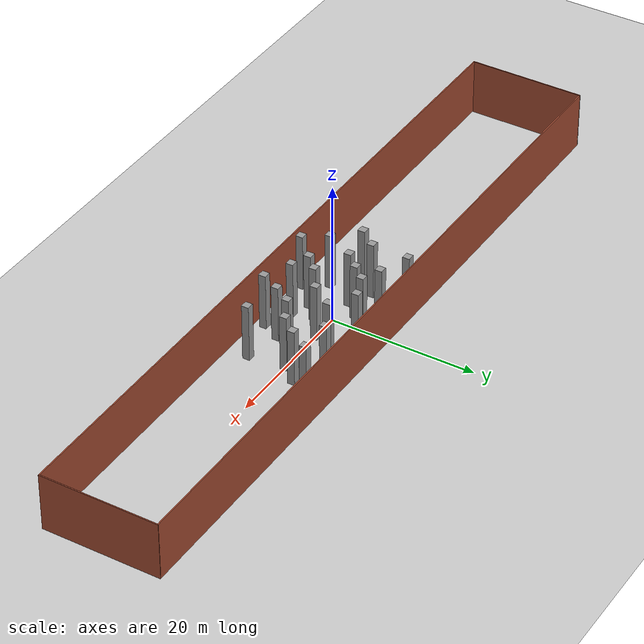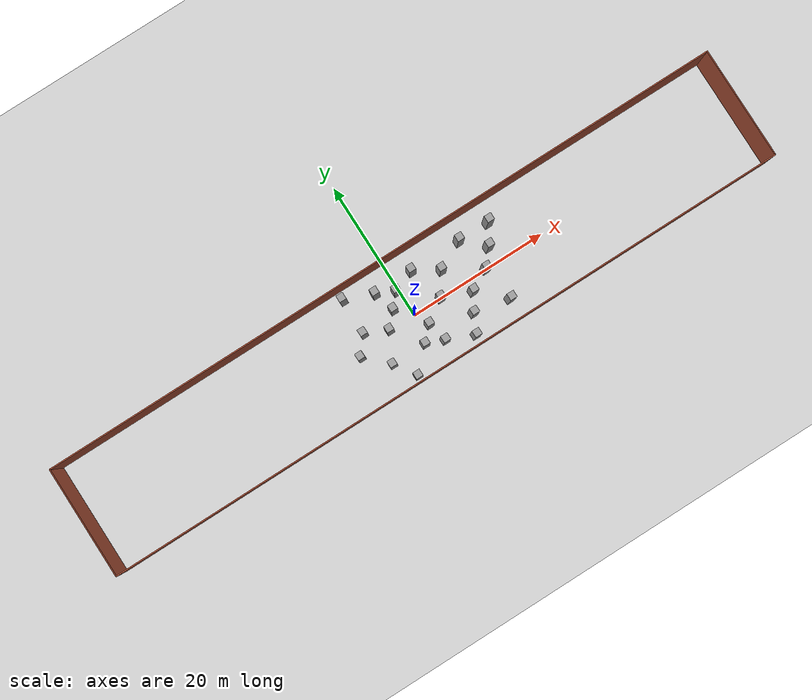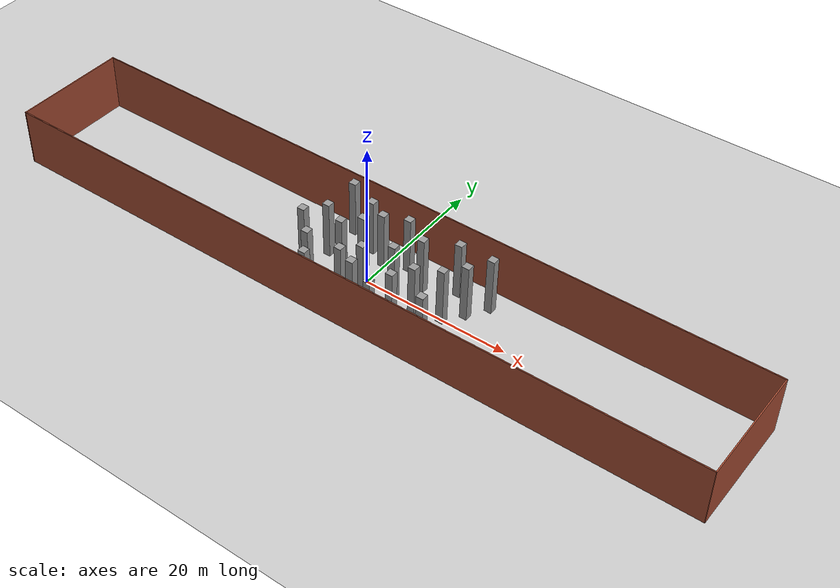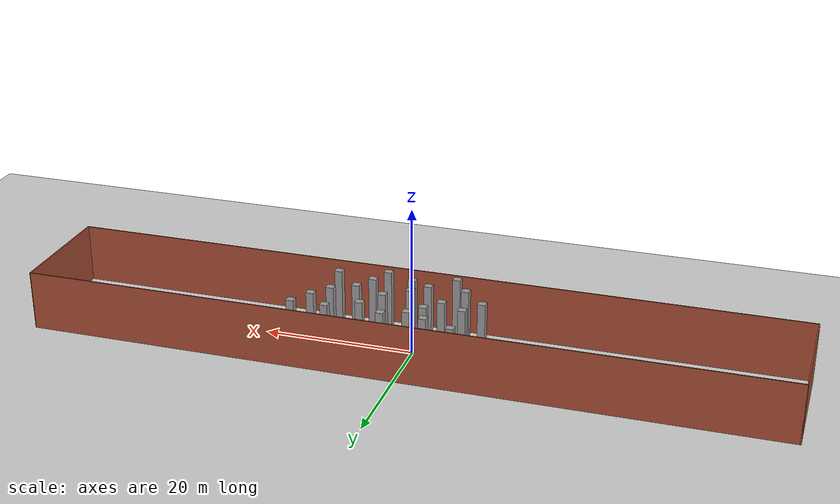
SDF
<sdf version="1.7">
 <world name="default">
  <model name="ground_plane">
   <static>1</static>
   <link name="link">
    <collision name="collision">
     <geometry><plane><normal>0 0 1</normal><size>100 100</size></plane></geometry>
     <surface>
      <contact><collide_bitmask>65535</collide_bitmask></contact>
      <friction><ode><mu>100</mu><mu2>50</mu2></ode></friction>
     </surface>
    </collision>
    <visual name="visual">
     <cast_shadows>0</cast_shadows>
     <geometry><plane><normal>0 0 1</normal><size>100 100</size></plane></geometry>
     <material>
      <script><uri>file://media/materials/scripts/gazebo.material</uri><name>Gazebo/Grey</name></script>
     </material>
    </visual>
   </link>
  </model>
  <model name="unit_box_static45">
   <link name="link">
    <inertial>
     <mass>1</mass>
     <inertia>
      <ixx>0.166667</ixx>
      <ixy>0</ixy>
      <ixz>0</ixz>
      <iyy>0.166667</iyy>
      <iyz>0</iyz>
      <izz>0.166667</izz>
     </inertia>
    </inertial>
    <visual name="visual">
     <geometry><box><size>1 1 8</size></box></geometry>
     <material>
      <script><name>Gazebo/Grey</name><uri>file://media/materials/scripts/gazebo.material</uri></script>
      <shader type="pixel"/>
     </material>
    </visual>
    <collision name="collision">
     <geometry><box><size>1 1 8</size></box></geometry>
     <surface>
      <friction>
       <ode><mu>1</mu><mu2>1</mu2><fdir1>0 0 0</fdir1><slip1>0</slip1><slip2>0</slip2></ode>
       <torsional>
        <coefficient>1</coefficient>
        <patch_radius>0</patch_radius>
        <surface_radius>0</surface_radius>
        <use_patch_radius>1</use_patch_radius>
        <ode><slip>0</slip></ode>
       </torsional>
      </friction>
      <bounce><restitution_coefficient>0</restitution_coefficient><threshold>1e+06</threshold></bounce>
      <contact>
       <collide_without_contact>0</collide_without_contact>
       <collide_without_contact_bitmask>1</collide_without_contact_bitmask>
       <collide_bitmask>1</collide_bitmask>
       <ode>
        <soft_cfm>0</soft_cfm>
        <soft_erp>0.2</soft_erp>
        <kp>1e+13</kp>
        <kd>1</kd>
        <max_vel>0.01</max_vel>
        <min_depth>0</min_depth>
       </ode>
       <bullet>
        <split_impulse>1</split_impulse>
        <split_impulse_penetration_threshold>-0.01</split_impulse_penetration_threshold>
        <soft_cfm>0</soft_cfm>
        <soft_erp>0.2</soft_erp>
        <kp>1e+13</kp>
        <kd>1</kd>
       </bullet>
      </contact>
     </surface>
    </collision>
   </link>
   <static>1</static>
   <pose>-7.06759 1.4444 4 0 -0 0</pose>
  </model>
  <model name="unit_box_static42_clone_5">
   <link name="link">
    <inertial>
     <mass>1</mass>
     <inertia>
      <ixx>0.166667</ixx>
      <ixy>0</ixy>
      <ixz>0</ixz>
      <iyy>0.166667</iyy>
      <iyz>0</iyz>
      <izz>0.166667</izz>
     </inertia>
    </inertial>
    <visual name="visual">
     <geometry><box><size>1 1 8</size></box></geometry>
     <material>
      <script><name>Gazebo/Grey</name><uri>file://media/materials/scripts/gazebo.material</uri></script>
      <shader type="pixel"/>
     </material>
    </visual>
    <collision name="collision">
     <geometry><box><size>1 1 8</size></box></geometry>
     <surface>
      <friction>
       <ode><mu>1</mu><mu2>1</mu2><fdir1>0 0 0</fdir1><slip1>0</slip1><slip2>0</slip2></ode>
       <torsional>
        <coefficient>1</coefficient>
        <patch_radius>0</patch_radius>
        <surface_radius>0</surface_radius>
        <use_patch_radius>1</use_patch_radius>
        <ode><slip>0</slip></ode>
       </torsional>
      </friction>
      <bounce><restitution_coefficient>0</restitution_coefficient><threshold>1e+06</threshold></bounce>
      <contact>
       <collide_without_contact>0</collide_without_contact>
       <collide_without_contact_bitmask>1</collide_without_contact_bitmask>
       <collide_bitmask>1</collide_bitmask>
       <ode>
        <soft_cfm>0</soft_cfm>
        <soft_erp>0.2</soft_erp>
        <kp>1e+13</kp>
        <kd>1</kd>
        <max_vel>0.01</max_vel>
        <min_depth>0</min_depth>
       </ode>
       <bullet>
        <split_impulse>1</split_impulse>
        <split_impulse_penetration_threshold>-0.01</split_impulse_penetration_threshold>
        <soft_cfm>0</soft_cfm>
        <soft_erp>0.2</soft_erp>
        <kp>1e+13</kp>
        <kd>1</kd>
       </bullet>
      </contact>
     </surface>
    </collision>
   </link>
   <static>1</static>
   <pose>-6 -4 4 0 -0 0</pose>
  </model>
  <model name="unit_box_static42_clone_6">
   <link name="link">
    <inertial>
     <mass>1</mass>
     <inertia>
      <ixx>0.166667</ixx>
      <ixy>0</ixy>
      <ixz>0</ixz>
      <iyy>0.166667</iyy>
      <iyz>0</iyz>
      <izz>0.166667</izz>
     </inertia>
    </inertial>
    <visual name="visual">
     <geometry><box><size>1 1 8</size></box></geometry>
     <material>
      <script><name>Gazebo/Grey</name><uri>file://media/materials/scripts/gazebo.material</uri></script>
      <shader type="pixel"/>
     </material>
    </visual>
    <collision name="collision">
     <geometry><box><size>1 1 8</size></box></geometry>
     <surface>
      <friction>
       <ode><mu>1</mu><mu2>1</mu2><fdir1>0 0 0</fdir1><slip1>0</slip1><slip2>0</slip2></ode>
       <torsional>
        <coefficient>1</coefficient>
        <patch_radius>0</patch_radius>
        <surface_radius>0</surface_radius>
        <use_patch_radius>1</use_patch_radius>
        <ode><slip>0</slip></ode>
       </torsional>
      </friction>
      <bounce><restitution_coefficient>0</restitution_coefficient><threshold>1e+06</threshold></bounce>
      <contact>
       <collide_without_contact>0</collide_without_contact>
       <collide_without_contact_bitmask>1</collide_without_contact_bitmask>
       <collide_bitmask>1</collide_bitmask>
       <ode>
        <soft_cfm>0</soft_cfm>
        <soft_erp>0.2</soft_erp>
        <kp>1e+13</kp>
        <kd>1</kd>
        <max_vel>0.01</max_vel>
        <min_depth>0</min_depth>
       </ode>
       <bullet>
        <split_impulse>1</split_impulse>
        <split_impulse_penetration_threshold>-0.01</split_impulse_penetration_threshold>
        <soft_cfm>0</soft_cfm>
        <soft_erp>0.2</soft_erp>
        <kp>1e+13</kp>
        <kd>1</kd>
       </bullet>
      </contact>
     </surface>
    </collision>
   </link>
   <static>1</static>
   <pose>-1 -4 4 0 -0 0</pose>
  </model>
  <model name="unit_box_static42_clone_7">
   <link name="link">
    <inertial>
     <mass>1</mass>
     <inertia>
      <ixx>0.166667</ixx>
      <ixy>0</ixy>
      <ixz>0</ixz>
      <iyy>0.166667</iyy>
      <iyz>0</iyz>
      <izz>0.166667</izz>
     </inertia>
    </inertial>
    <visual name="visual">
     <geometry><box><size>1 1 8</size></box></geometry>
     <material>
      <script><name>Gazebo/Grey</name><uri>file://media/materials/scripts/gazebo.material</uri></script>
      <shader type="pixel"/>
     </material>
    </visual>
    <collision name="collision">
     <geometry><box><size>1 1 8</size></box></geometry>
     <surface>
      <friction>
       <ode><mu>1</mu><mu2>1</mu2><fdir1>0 0 0</fdir1><slip1>0</slip1><slip2>0</slip2></ode>
       <torsional>
        <coefficient>1</coefficient>
        <patch_radius>0</patch_radius>
        <surface_radius>0</surface_radius>
        <use_patch_radius>1</use_patch_radius>
        <ode><slip>0</slip></ode>
       </torsional>
      </friction>
      <bounce><restitution_coefficient>0</restitution_coefficient><threshold>1e+06</threshold></bounce>
      <contact>
       <collide_without_contact>0</collide_without_contact>
       <collide_without_contact_bitmask>1</collide_without_contact_bitmask>
       <collide_bitmask>1</collide_bitmask>
       <ode>
        <soft_cfm>0</soft_cfm>
        <soft_erp>0.2</soft_erp>
        <kp>1e+13</kp>
        <kd>1</kd>
        <max_vel>0.01</max_vel>
        <min_depth>0</min_depth>
       </ode>
       <bullet>
        <split_impulse>1</split_impulse>
        <split_impulse_penetration_threshold>-0.01</split_impulse_penetration_threshold>
        <soft_cfm>0</soft_cfm>
        <soft_erp>0.2</soft_erp>
        <kp>1e+13</kp>
        <kd>1</kd>
       </bullet>
      </contact>
     </surface>
    </collision>
   </link>
   <static>1</static>
   <pose>1.50185 -5 4 0 -0 0</pose>
  </model>
  <model name="unit_box_static42_clone_8">
   <link name="link">
    <inertial>
     <mass>1</mass>
     <inertia>
      <ixx>0.166667</ixx>
      <ixy>0</ixy>
      <ixz>0</ixz>
      <iyy>0.166667</iyy>
      <iyz>0</iyz>
      <izz>0.166667</izz>
     </inertia>
    </inertial>
    <visual name="visual">
     <geometry><box><size>1 1 8</size></box></geometry>
     <material>
      <script><name>Gazebo/Grey</name><uri>file://media/materials/scripts/gazebo.material</uri></script>
      <shader type="pixel"/>
     </material>
    </visual>
    <collision name="collision">
     <geometry><box><size>1 1 8</size></box></geometry>
     <surface>
      <friction>
       <ode><mu>1</mu><mu2>1</mu2><fdir1>0 0 0</fdir1><slip1>0</slip1><slip2>0</slip2></ode>
       <torsional>
        <coefficient>1</coefficient>
        <patch_radius>0</patch_radius>
        <surface_radius>0</surface_radius>
        <use_patch_radius>1</use_patch_radius>
        <ode><slip>0</slip></ode>
       </torsional>
      </friction>
      <bounce><restitution_coefficient>0</restitution_coefficient><threshold>1e+06</threshold></bounce>
      <contact>
       <collide_without_contact>0</collide_without_contact>
       <collide_without_contact_bitmask>1</collide_without_contact_bitmask>
       <collide_bitmask>1</collide_bitmask>
       <ode>
        <soft_cfm>0</soft_cfm>
        <soft_erp>0.2</soft_erp>
        <kp>1e+13</kp>
        <kd>1</kd>
        <max_vel>0.01</max_vel>
        <min_depth>0</min_depth>
       </ode>
       <bullet>
        <split_impulse>1</split_impulse>
        <split_impulse_penetration_threshold>-0.01</split_impulse_penetration_threshold>
        <soft_cfm>0</soft_cfm>
        <soft_erp>0.2</soft_erp>
        <kp>1e+13</kp>
        <kd>1</kd>
       </bullet>
      </contact>
     </surface>
    </collision>
   </link>
   <static>1</static>
   <pose>6.52975 -4 4 0 -0 0</pose>
  </model>
  <model name="unit_box_static42_clone_9">
   <link name="link">
    <inertial>
     <mass>1</mass>
     <inertia>
      <ixx>0.166667</ixx>
      <ixy>0</ixy>
      <ixz>0</ixz>
      <iyy>0.166667</iyy>
      <iyz>0</iyz>
      <izz>0.166667</izz>
     </inertia>
    </inertial>
    <visual name="visual">
     <geometry><box><size>1 1 8</size></box></geometry>
     <material>
      <script><name>Gazebo/Grey</name><uri>file://media/materials/scripts/gazebo.material</uri></script>
      <shader type="pixel"/>
     </material>
    </visual>
    <collision name="collision">
     <geometry><box><size>1 1 8</size></box></geometry>
     <surface>
      <friction>
       <ode><mu>1</mu><mu2>1</mu2><fdir1>0 0 0</fdir1><slip1>0</slip1><slip2>0</slip2></ode>
       <torsional>
        <coefficient>1</coefficient>
        <patch_radius>0</patch_radius>
        <surface_radius>0</surface_radius>
        <use_patch_radius>1</use_patch_radius>
        <ode><slip>0</slip></ode>
       </torsional>
      </friction>
      <bounce><restitution_coefficient>0</restitution_coefficient><threshold>1e+06</threshold></bounce>
      <contact>
       <collide_without_contact>0</collide_without_contact>
       <collide_without_contact_bitmask>1</collide_without_contact_bitmask>
       <collide_bitmask>1</collide_bitmask>
       <ode>
        <soft_cfm>0</soft_cfm>
        <soft_erp>0.2</soft_erp>
        <kp>1e+13</kp>
        <kd>1</kd>
        <max_vel>0.01</max_vel>
        <min_depth>0</min_depth>
       </ode>
       <bullet>
        <split_impulse>1</split_impulse>
        <split_impulse_penetration_threshold>-0.01</split_impulse_penetration_threshold>
        <soft_cfm>0</soft_cfm>
        <soft_erp>0.2</soft_erp>
        <kp>1e+13</kp>
        <kd>1</kd>
       </bullet>
      </contact>
     </surface>
    </collision>
   </link>
   <static>1</static>
   <pose>8 -1.57202 4 0 -0 0</pose>
  </model>
  <model name="unit_box_static42_clone_15">
   <link name="link">
    <inertial>
     <mass>1</mass>
     <inertia>
      <ixx>0.166667</ixx>
      <ixy>0</ixy>
      <ixz>0</ixz>
      <iyy>0.166667</iyy>
      <iyz>0</iyz>
      <izz>0.166667</izz>
     </inertia>
    </inertial>
    <visual name="visual">
     <geometry><box><size>1 1 8</size></box></geometry>
     <material>
      <script><name>Gazebo/Grey</name><uri>file://media/materials/scripts/gazebo.material</uri></script>
      <shader type="pixel"/>
     </material>
    </visual>
    <collision name="collision">
     <geometry><box><size>1 1 8</size></box></geometry>
     <surface>
      <friction>
       <ode><mu>1</mu><mu2>1</mu2><fdir1>0 0 0</fdir1><slip1>0</slip1><slip2>0</slip2></ode>
       <torsional>
        <coefficient>1</coefficient>
        <patch_radius>0</patch_radius>
        <surface_radius>0</surface_radius>
        <use_patch_radius>1</use_patch_radius>
        <ode><slip>0</slip></ode>
       </torsional>
      </friction>
      <bounce><restitution_coefficient>0</restitution_coefficient><threshold>1e+06</threshold></bounce>
      <contact>
       <collide_without_contact>0</collide_without_contact>
       <collide_without_contact_bitmask>1</collide_without_contact_bitmask>
       <collide_bitmask>1</collide_bitmask>
       <ode>
        <soft_cfm>0</soft_cfm>
        <soft_erp>0.2</soft_erp>
        <kp>1e+13</kp>
        <kd>1</kd>
        <max_vel>0.01</max_vel>
        <min_depth>0</min_depth>
       </ode>
       <bullet>
        <split_impulse>1</split_impulse>
        <split_impulse_penetration_threshold>-0.01</split_impulse_penetration_threshold>
        <soft_cfm>0</soft_cfm>
        <soft_erp>0.2</soft_erp>
        <kp>1e+13</kp>
        <kd>1</kd>
       </bullet>
      </contact>
     </surface>
    </collision>
   </link>
   <static>1</static>
   <pose>11 0 4 0 -0 0</pose>
  </model>
  <model name="unit_box_static42_clone_16">
   <link name="link">
    <inertial>
     <mass>1</mass>
     <inertia>
      <ixx>0.166667</ixx>
      <ixy>0</ixy>
      <ixz>0</ixz>
      <iyy>0.166667</iyy>
      <iyz>0</iyz>
      <izz>0.166667</izz>
     </inertia>
    </inertial>
    <visual name="visual">
     <geometry><box><size>1 1 8</size></box></geometry>
     <material>
      <script><name>Gazebo/Grey</name><uri>file://media/materials/scripts/gazebo.material</uri></script>
      <shader type="pixel"/>
     </material>
    </visual>
    <collision name="collision">
     <geometry><box><size>1 1 8</size></box></geometry>
     <surface>
      <friction>
       <ode><mu>1</mu><mu2>1</mu2><fdir1>0 0 0</fdir1><slip1>0</slip1><slip2>0</slip2></ode>
       <torsional>
        <coefficient>1</coefficient>
        <patch_radius>0</patch_radius>
        <surface_radius>0</surface_radius>
        <use_patch_radius>1</use_patch_radius>
        <ode><slip>0</slip></ode>
       </torsional>
      </friction>
      <bounce><restitution_coefficient>0</restitution_coefficient><threshold>1e+06</threshold></bounce>
      <contact>
       <collide_without_contact>0</collide_without_contact>
       <collide_without_contact_bitmask>1</collide_without_contact_bitmask>
       <collide_bitmask>1</collide_bitmask>
       <ode>
        <soft_cfm>0</soft_cfm>
        <soft_erp>0.2</soft_erp>
        <kp>1e+13</kp>
        <kd>1</kd>
        <max_vel>0.01</max_vel>
        <min_depth>0</min_depth>
       </ode>
       <bullet>
        <split_impulse>1</split_impulse>
        <split_impulse_penetration_threshold>-0.01</split_impulse_penetration_threshold>
        <soft_cfm>0</soft_cfm>
        <soft_erp>0.2</soft_erp>
        <kp>1e+13</kp>
        <kd>1</kd>
       </bullet>
      </contact>
     </surface>
    </collision>
   </link>
   <static>1</static>
   <pose>14.5618 5 4 0 -0 0</pose>
  </model>
  <model name="unit_box_static42_clone_17">
   <link name="link">
    <inertial>
     <mass>1</mass>
     <inertia>
      <ixx>0.166667</ixx>
      <ixy>0</ixy>
      <ixz>0</ixz>
      <iyy>0.166667</iyy>
      <iyz>0</iyz>
      <izz>0.166667</izz>
     </inertia>
    </inertial>
    <visual name="visual">
     <geometry><box><size>1 1 8</size></box></geometry>
     <material>
      <script><name>Gazebo/Grey</name><uri>file://media/materials/scripts/gazebo.material</uri></script>
      <shader type="pixel"/>
     </material>
    </visual>
    <collision name="collision">
     <geometry><box><size>1 1 8</size></box></geometry>
     <surface>
      <friction>
       <ode><mu>1</mu><mu2>1</mu2><fdir1>0 0 0</fdir1><slip1>0</slip1><slip2>0</slip2></ode>
       <torsional>
        <coefficient>1</coefficient>
        <patch_radius>0</patch_radius>
        <surface_radius>0</surface_radius>
        <use_patch_radius>1</use_patch_radius>
        <ode><slip>0</slip></ode>
       </torsional>
      </friction>
      <bounce><restitution_coefficient>0</restitution_coefficient><threshold>1e+06</threshold></bounce>
      <contact>
       <collide_without_contact>0</collide_without_contact>
       <collide_without_contact_bitmask>1</collide_without_contact_bitmask>
       <collide_bitmask>1</collide_bitmask>
       <ode>
        <soft_cfm>0</soft_cfm>
        <soft_erp>0.2</soft_erp>
        <kp>1e+13</kp>
        <kd>1</kd>
        <max_vel>0.01</max_vel>
        <min_depth>0</min_depth>
       </ode>
       <bullet>
        <split_impulse>1</split_impulse>
        <split_impulse_penetration_threshold>-0.01</split_impulse_penetration_threshold>
        <soft_cfm>0</soft_cfm>
        <soft_erp>0.2</soft_erp>
        <kp>1e+13</kp>
        <kd>1</kd>
       </bullet>
      </contact>
     </surface>
    </collision>
   </link>
   <static>1</static>
   <pose>6 3 4 0 -0 0</pose>
  </model>
  <model name="unit_box_static42_clone_18">
   <link name="link">
    <inertial>
     <mass>1</mass>
     <inertia>
      <ixx>0.166667</ixx>
      <ixy>0</ixy>
      <ixz>0</ixz>
      <iyy>0.166667</iyy>
      <iyz>0</iyz>
      <izz>0.166667</izz>
     </inertia>
    </inertial>
    <visual name="visual">
     <geometry><box><size>1 1 8</size></box></geometry>
     <material>
      <script><name>Gazebo/Grey</name><uri>file://media/materials/scripts/gazebo.material</uri></script>
      <shader type="pixel"/>
     </material>
    </visual>
    <collision name="collision">
     <geometry><box><size>1 1 8</size></box></geometry>
     <surface>
      <friction>
       <ode><mu>1</mu><mu2>1</mu2><fdir1>0 0 0</fdir1><slip1>0</slip1><slip2>0</slip2></ode>
       <torsional>
        <coefficient>1</coefficient>
        <patch_radius>0</patch_radius>
        <surface_radius>0</surface_radius>
        <use_patch_radius>1</use_patch_radius>
        <ode><slip>0</slip></ode>
       </torsional>
      </friction>
      <bounce><restitution_coefficient>0</restitution_coefficient><threshold>1e+06</threshold></bounce>
      <contact>
       <collide_without_contact>0</collide_without_contact>
       <collide_without_contact_bitmask>1</collide_without_contact_bitmask>
       <collide_bitmask>1</collide_bitmask>
       <ode>
        <soft_cfm>0</soft_cfm>
        <soft_erp>0.2</soft_erp>
        <kp>1e+13</kp>
        <kd>1</kd>
        <max_vel>0.01</max_vel>
        <min_depth>0</min_depth>
       </ode>
       <bullet>
        <split_impulse>1</split_impulse>
        <split_impulse_penetration_threshold>-0.01</split_impulse_penetration_threshold>
        <soft_cfm>0</soft_cfm>
        <soft_erp>0.2</soft_erp>
        <kp>1e+13</kp>
        <kd>1</kd>
       </bullet>
      </contact>
     </surface>
    </collision>
   </link>
   <static>1</static>
   <pose>2.57681 5 4 0 -0 0</pose>
  </model>
  <model name="unit_box_static42_clone_19">
   <link name="link">
    <inertial>
     <mass>1</mass>
     <inertia>
      <ixx>0.166667</ixx>
      <ixy>0</ixy>
      <ixz>0</ixz>
      <iyy>0.166667</iyy>
      <iyz>0</iyz>
      <izz>0.166667</izz>
     </inertia>
    </inertial>
    <visual name="visual">
     <geometry><box><size>1 1 8</size></box></geometry>
     <material>
      <script><name>Gazebo/Grey</name><uri>file://media/materials/scripts/gazebo.material</uri></script>
      <shader type="pixel"/>
     </material>
    </visual>
    <collision name="collision">
     <geometry><box><size>1 1 8</size></box></geometry>
     <surface>
      <friction>
       <ode><mu>1</mu><mu2>1</mu2><fdir1>0 0 0</fdir1><slip1>0</slip1><slip2>0</slip2></ode>
       <torsional>
        <coefficient>1</coefficient>
        <patch_radius>0</patch_radius>
        <surface_radius>0</surface_radius>
        <use_patch_radius>1</use_patch_radius>
        <ode><slip>0</slip></ode>
       </torsional>
      </friction>
      <bounce><restitution_coefficient>0</restitution_coefficient><threshold>1e+06</threshold></bounce>
      <contact>
       <collide_without_contact>0</collide_without_contact>
       <collide_without_contact_bitmask>1</collide_without_contact_bitmask>
       <collide_bitmask>1</collide_bitmask>
       <ode>
        <soft_cfm>0</soft_cfm>
        <soft_erp>0.2</soft_erp>
        <kp>1e+13</kp>
        <kd>1</kd>
        <max_vel>0.01</max_vel>
        <min_depth>0</min_depth>
       </ode>
       <bullet>
        <split_impulse>1</split_impulse>
        <split_impulse_penetration_threshold>-0.01</split_impulse_penetration_threshold>
        <soft_cfm>0</soft_cfm>
        <soft_erp>0.2</soft_erp>
        <kp>1e+13</kp>
        <kd>1</kd>
       </bullet>
      </contact>
     </surface>
    </collision>
   </link>
   <static>1</static>
   <pose>-7 6.58163 4 0 -0 0</pose>
  </model>
  <model name="unit_box_static42_clone_31">
   <link name="link">
    <inertial>
     <mass>1</mass>
     <inertia>
      <ixx>0.166667</ixx>
      <ixy>0</ixy>
      <ixz>0</ixz>
      <iyy>0.166667</iyy>
      <iyz>0</iyz>
      <izz>0.166667</izz>
     </inertia>
    </inertial>
    <visual name="visual">
     <geometry><box><size>1 1 8</size></box></geometry>
     <material>
      <script><name>Gazebo/Grey</name><uri>file://media/materials/scripts/gazebo.material</uri></script>
      <shader type="pixel"/>
     </material>
    </visual>
    <collision name="collision">
     <geometry><box><size>1 1 8</size></box></geometry>
     <surface>
      <friction>
       <ode><mu>1</mu><mu2>1</mu2><fdir1>0 0 0</fdir1><slip1>0</slip1><slip2>0</slip2></ode>
       <torsional>
        <coefficient>1</coefficient>
        <patch_radius>0</patch_radius>
        <surface_radius>0</surface_radius>
        <use_patch_radius>1</use_patch_radius>
        <ode><slip>0</slip></ode>
       </torsional>
      </friction>
      <bounce><restitution_coefficient>0</restitution_coefficient><threshold>1e+06</threshold></bounce>
      <contact>
       <collide_without_contact>0</collide_without_contact>
       <collide_without_contact_bitmask>1</collide_without_contact_bitmask>
       <collide_bitmask>1</collide_bitmask>
       <ode>
        <soft_cfm>0</soft_cfm>
        <soft_erp>0.2</soft_erp>
        <kp>1e+13</kp>
        <kd>1</kd>
        <max_vel>0.01</max_vel>
        <min_depth>0</min_depth>
       </ode>
       <bullet>
        <split_impulse>1</split_impulse>
        <split_impulse_penetration_threshold>-0.01</split_impulse_penetration_threshold>
        <soft_cfm>0</soft_cfm>
        <soft_erp>0.2</soft_erp>
        <kp>1e+13</kp>
        <kd>1</kd>
       </bullet>
      </contact>
     </surface>
    </collision>
   </link>
   <static>1</static>
   <pose>-3.95356 0 4 0 -0 0</pose>
  </model>
  <model name="unit_box_static42_clone_32">
   <link name="link">
    <inertial>
     <mass>1</mass>
     <inertia>
      <ixx>0.166667</ixx>
      <ixy>0</ixy>
      <ixz>0</ixz>
      <iyy>0.166667</iyy>
      <iyz>0</iyz>
      <izz>0.166667</izz>
     </inertia>
    </inertial>
    <visual name="visual">
     <geometry><box><size>1 1 8</size></box></geometry>
     <material>
      <script><name>Gazebo/Grey</name><uri>file://media/materials/scripts/gazebo.material</uri></script>
      <shader type="pixel"/>
     </material>
    </visual>
    <collision name="collision">
     <geometry><box><size>1 1 8</size></box></geometry>
     <surface>
      <friction>
       <ode><mu>1</mu><mu2>1</mu2><fdir1>0 0 0</fdir1><slip1>0</slip1><slip2>0</slip2></ode>
       <torsional>
        <coefficient>1</coefficient>
        <patch_radius>0</patch_radius>
        <surface_radius>0</surface_radius>
        <use_patch_radius>1</use_patch_radius>
        <ode><slip>0</slip></ode>
       </torsional>
      </friction>
      <bounce><restitution_coefficient>0</restitution_coefficient><threshold>1e+06</threshold></bounce>
      <contact>
       <collide_without_contact>0</collide_without_contact>
       <collide_without_contact_bitmask>1</collide_without_contact_bitmask>
       <collide_bitmask>1</collide_bitmask>
       <ode>
        <soft_cfm>0</soft_cfm>
        <soft_erp>0.2</soft_erp>
        <kp>1e+13</kp>
        <kd>1</kd>
        <max_vel>0.01</max_vel>
        <min_depth>0</min_depth>
       </ode>
       <bullet>
        <split_impulse>1</split_impulse>
        <split_impulse_penetration_threshold>-0.01</split_impulse_penetration_threshold>
        <soft_cfm>0</soft_cfm>
        <soft_erp>0.2</soft_erp>
        <kp>1e+13</kp>
        <kd>1</kd>
       </bullet>
      </contact>
     </surface>
    </collision>
   </link>
   <static>1</static>
   <pose>-0.490604 3.82689 4 0 -0 0</pose>
  </model>
  <model name="unit_box_static42_clone_39">
   <link name="link">
    <inertial>
     <mass>1</mass>
     <inertia>
      <ixx>0.166667</ixx>
      <ixy>0</ixy>
      <ixz>0</ixz>
      <iyy>0.166667</iyy>
      <iyz>0</iyz>
      <izz>0.166667</izz>
     </inertia>
    </inertial>
    <visual name="visual">
     <geometry><box><size>1 1 8</size></box></geometry>
     <material>
      <script><name>Gazebo/Grey</name><uri>file://media/materials/scripts/gazebo.material</uri></script>
      <shader type="pixel"/>
     </material>
    </visual>
    <collision name="collision">
     <geometry><box><size>1 1 8</size></box></geometry>
     <surface>
      <friction>
       <ode><mu>1</mu><mu2>1</mu2><fdir1>0 0 0</fdir1><slip1>0</slip1><slip2>0</slip2></ode>
       <torsional>
        <coefficient>1</coefficient>
        <patch_radius>0</patch_radius>
        <surface_radius>0</surface_radius>
        <use_patch_radius>1</use_patch_radius>
        <ode><slip>0</slip></ode>
       </torsional>
      </friction>
      <bounce><restitution_coefficient>0</restitution_coefficient><threshold>1e+06</threshold></bounce>
      <contact>
       <collide_without_contact>0</collide_without_contact>
       <collide_without_contact_bitmask>1</collide_without_contact_bitmask>
       <collide_bitmask>1</collide_bitmask>
       <ode>
        <soft_cfm>0</soft_cfm>
        <soft_erp>0.2</soft_erp>
        <kp>1e+13</kp>
        <kd>1</kd>
        <max_vel>0.01</max_vel>
        <min_depth>0</min_depth>
       </ode>
       <bullet>
        <split_impulse>1</split_impulse>
        <split_impulse_penetration_threshold>-0.01</split_impulse_penetration_threshold>
        <soft_cfm>0</soft_cfm>
        <soft_erp>0.2</soft_erp>
        <kp>1e+13</kp>
        <kd>1</kd>
       </bullet>
      </contact>
     </surface>
    </collision>
   </link>
   <static>1</static>
   <pose>-2.12265 1.97718 4 0 -0 0</pose>
  </model>
  <model name="rect_slim_long">
   <link name="Wall_R">
    <pose>0 -8 0 0 -0 3.14159</pose>
    <visual name="Wall_R_Visual">
     <pose>0 0 4 0 -0 0</pose>
     <geometry><box><size>100 0.15 8</size></box></geometry>
     <material>
      <script><uri>file://media/materials/scripts/gazebo.material</uri><name>Gazebo/Bricks</name></script>
      <ambient>1 1 1 1</ambient>
      <shader type="pixel"/>
     </material>
     <meta><layer>0</layer></meta>
    </visual>
    <collision name="Wall_R_Collision">
     <pose>0 0 4 0 -0 0</pose>
     <geometry><box><size>100 0.15 8</size></box></geometry>
     <surface>
      <friction>
       <ode><mu>1</mu><mu2>1</mu2><fdir1>0 0 0</fdir1><slip1>0</slip1><slip2>0</slip2></ode>
       <torsional>
        <coefficient>1</coefficient>
        <patch_radius>0</patch_radius>
        <surface_radius>0</surface_radius>
        <use_patch_radius>1</use_patch_radius>
        <ode><slip>0</slip></ode>
       </torsional>
      </friction>
      <bounce><restitution_coefficient>0</restitution_coefficient><threshold>1e+06</threshold></bounce>
      <contact>
       <collide_without_contact>0</collide_without_contact>
       <collide_without_contact_bitmask>1</collide_without_contact_bitmask>
       <collide_bitmask>1</collide_bitmask>
       <ode>
        <soft_cfm>0</soft_cfm>
        <soft_erp>0.2</soft_erp>
        <kp>1e+13</kp>
        <kd>1</kd>
        <max_vel>0.01</max_vel>
        <min_depth>0</min_depth>
       </ode>
       <bullet>
        <split_impulse>1</split_impulse>
        <split_impulse_penetration_threshold>-0.01</split_impulse_penetration_threshold>
        <soft_cfm>0</soft_cfm>
        <soft_erp>0.2</soft_erp>
        <kp>1e+13</kp>
        <kd>1</kd>
       </bullet>
      </contact>
     </surface>
    </collision>
   </link>
   <link name="Wall_D">
    <pose>-50 0 0 0 0 -1.5708</pose>
    <visual name="Wall_D_Visual">
     <pose>0 0 4 0 -0 0</pose>
     <geometry><box><size>16.15 0.15 8</size></box></geometry>
     <material>
      <script><uri>file://media/materials/scripts/gazebo.material</uri><name>Gazebo/Bricks</name></script>
      <ambient>1 1 1 1</ambient>
      <shader type="pixel"/>
     </material>
     <meta><layer>0</layer></meta>
    </visual>
    <collision name="Wall_D_Collision">
     <pose>0 0 4 0 -0 0</pose>
     <geometry><box><size>16.15 0.15 8</size></box></geometry>
     <surface>
      <friction>
       <ode><mu>1</mu><mu2>1</mu2><fdir1>0 0 0</fdir1><slip1>0</slip1><slip2>0</slip2></ode>
       <torsional>
        <coefficient>1</coefficient>
        <patch_radius>0</patch_radius>
        <surface_radius>0</surface_radius>
        <use_patch_radius>1</use_patch_radius>
        <ode><slip>0</slip></ode>
       </torsional>
      </friction>
      <bounce><restitution_coefficient>0</restitution_coefficient><threshold>1e+06</threshold></bounce>
      <contact>
       <collide_without_contact>0</collide_without_contact>
       <collide_without_contact_bitmask>1</collide_without_contact_bitmask>
       <collide_bitmask>1</collide_bitmask>
       <ode>
        <soft_cfm>0</soft_cfm>
        <soft_erp>0.2</soft_erp>
        <kp>1e+13</kp>
        <kd>1</kd>
        <max_vel>0.01</max_vel>
        <min_depth>0</min_depth>
       </ode>
       <bullet>
        <split_impulse>1</split_impulse>
        <split_impulse_penetration_threshold>-0.01</split_impulse_penetration_threshold>
        <soft_cfm>0</soft_cfm>
        <soft_erp>0.2</soft_erp>
        <kp>1e+13</kp>
        <kd>1</kd>
       </bullet>
      </contact>
     </surface>
    </collision>
   </link>
   <link name="Wall_L">
    <pose>0 8 0 0 -0 0</pose>
    <visual name="Wall_L_Visual">
     <pose>0 0 4 0 -0 0</pose>
     <geometry><box><size>100 0.15 8</size></box></geometry>
     <material>
      <script><uri>file://media/materials/scripts/gazebo.material</uri><name>Gazebo/Bricks</name></script>
      <ambient>1 1 1 1</ambient>
      <shader type="pixel"/>
     </material>
     <meta><layer>0</layer></meta>
    </visual>
    <collision name="Wall_L_Collision">
     <pose>0 0 4 0 -0 0</pose>
     <geometry><box><size>100 0.15 8</size></box></geometry>
     <surface>
      <friction>
       <ode><mu>1</mu><mu2>1</mu2><fdir1>0 0 0</fdir1><slip1>0</slip1><slip2>0</slip2></ode>
       <torsional>
        <coefficient>1</coefficient>
        <patch_radius>0</patch_radius>
        <surface_radius>0</surface_radius>
        <use_patch_radius>1</use_patch_radius>
        <ode><slip>0</slip></ode>
       </torsional>
      </friction>
      <bounce><restitution_coefficient>0</restitution_coefficient><threshold>1e+06</threshold></bounce>
      <contact>
       <collide_without_contact>0</collide_without_contact>
       <collide_without_contact_bitmask>1</collide_without_contact_bitmask>
       <collide_bitmask>1</collide_bitmask>
       <ode>
        <soft_cfm>0</soft_cfm>
        <soft_erp>0.2</soft_erp>
        <kp>1e+13</kp>
        <kd>1</kd>
        <max_vel>0.01</max_vel>
        <min_depth>0</min_depth>
       </ode>
       <bullet>
        <split_impulse>1</split_impulse>
        <split_impulse_penetration_threshold>-0.01</split_impulse_penetration_threshold>
        <soft_cfm>0</soft_cfm>
        <soft_erp>0.2</soft_erp>
        <kp>1e+13</kp>
        <kd>1</kd>
       </bullet>
      </contact>
     </surface>
    </collision>
   </link>
   <link name="Wall_U">
    <pose>50 0 0 0 0 -1.5708</pose>
    <visual name="Wall_U_Visual">
     <pose>0 0 4 0 -0 0</pose>
     <geometry><box><size>16.15 0.15 8</size></box></geometry>
     <material>
      <script><uri>file://media/materials/scripts/gazebo.material</uri><name>Gazebo/Bricks</name></script>
      <ambient>1 1 1 1</ambient>
      <shader type="pixel"/>
     </material>
     <meta><layer>0</layer></meta>
    </visual>
    <collision name="Wall_U_Collision">
     <pose>0 0 4 0 -0 0</pose>
     <geometry><box><size>16.15 0.15 8</size></box></geometry>
     <surface>
      <friction>
       <ode><mu>1</mu><mu2>1</mu2><fdir1>0 0 0</fdir1><slip1>0</slip1><slip2>0</slip2></ode>
       <torsional>
        <coefficient>1</coefficient>
        <patch_radius>0</patch_radius>
        <surface_radius>0</surface_radius>
        <use_patch_radius>1</use_patch_radius>
        <ode><slip>0</slip></ode>
       </torsional>
      </friction>
      <bounce><restitution_coefficient>0</restitution_coefficient><threshold>1e+06</threshold></bounce>
      <contact>
       <collide_without_contact>0</collide_without_contact>
       <collide_without_contact_bitmask>1</collide_without_contact_bitmask>
       <collide_bitmask>1</collide_bitmask>
       <ode>
        <soft_cfm>0</soft_cfm>
        <soft_erp>0.2</soft_erp>
        <kp>1e+13</kp>
        <kd>1</kd>
        <max_vel>0.01</max_vel>
        <min_depth>0</min_depth>
       </ode>
       <bullet>
        <split_impulse>1</split_impulse>
        <split_impulse_penetration_threshold>-0.01</split_impulse_penetration_threshold>
        <soft_cfm>0</soft_cfm>
        <soft_erp>0.2</soft_erp>
        <kp>1e+13</kp>
        <kd>1</kd>
       </bullet>
      </contact>
     </surface>
    </collision>
   </link>
   <static>1</static>
  </model>
  <model name="unit_box_static42_clone_37_clone_9">
   <link name="link">
    <inertial>
     <mass>1</mass>
     <inertia>
      <ixx>0.166667</ixx>
      <ixy>0</ixy>
      <ixz>0</ixz>
      <iyy>0.166667</iyy>
      <iyz>0</iyz>
      <izz>0.166667</izz>
     </inertia>
    </inertial>
    <visual name="visual">
     <geometry><box><size>1 1 8</size></box></geometry>
     <material>
      <script><name>Gazebo/Grey</name><uri>file://media/materials/scripts/gazebo.material</uri></script>
      <shader type="pixel"/>
     </material>
    </visual>
    <collision name="collision">
     <geometry><box><size>1 1 8</size></box></geometry>
     <surface>
      <friction>
       <ode><mu>1</mu><mu2>1</mu2><fdir1>0 0 0</fdir1><slip1>0</slip1><slip2>0</slip2></ode>
       <torsional>
        <coefficient>1</coefficient>
        <patch_radius>0</patch_radius>
        <surface_radius>0</surface_radius>
        <use_patch_radius>1</use_patch_radius>
        <ode><slip>0</slip></ode>
       </torsional>
      </friction>
      <bounce><restitution_coefficient>0</restitution_coefficient><threshold>1e+06</threshold></bounce>
      <contact>
       <collide_without_contact>0</collide_without_contact>
       <collide_without_contact_bitmask>1</collide_without_contact_bitmask>
       <collide_bitmask>1</collide_bitmask>
       <ode>
        <soft_cfm>0</soft_cfm>
        <soft_erp>0.2</soft_erp>
        <kp>1e+13</kp>
        <kd>1</kd>
        <max_vel>0.01</max_vel>
        <min_depth>0</min_depth>
       </ode>
       <bullet>
        <split_impulse>1</split_impulse>
        <split_impulse_penetration_threshold>-0.01</split_impulse_penetration_threshold>
        <soft_cfm>0</soft_cfm>
        <soft_erp>0.2</soft_erp>
        <kp>1e+13</kp>
        <kd>1</kd>
       </bullet>
      </contact>
     </surface>
    </collision>
   </link>
   <static>1</static>
   <pose>0.852225 -2.12832 4 0 -0 0</pose>
  </model>
  <model name="unit_box_static42_clone_37_clone_10">
   <link name="link">
    <inertial>
     <mass>1</mass>
     <inertia>
      <ixx>0.166667</ixx>
      <ixy>0</ixy>
      <ixz>0</ixz>
      <iyy>0.166667</iyy>
      <iyz>0</iyz>
      <izz>0.166667</izz>
     </inertia>
    </inertial>
    <visual name="visual">
     <geometry><box><size>1 1 8</size></box></geometry>
     <material>
      <script><name>Gazebo/Grey</name><uri>file://media/materials/scripts/gazebo.material</uri></script>
      <shader type="pixel"/>
     </material>
    </visual>
    <collision name="collision">
     <geometry><box><size>1 1 8</size></box></geometry>
     <surface>
      <friction>
       <ode><mu>1</mu><mu2>1</mu2><fdir1>0 0 0</fdir1><slip1>0</slip1><slip2>0</slip2></ode>
       <torsional>
        <coefficient>1</coefficient>
        <patch_radius>0</patch_radius>
        <surface_radius>0</surface_radius>
        <use_patch_radius>1</use_patch_radius>
        <ode><slip>0</slip></ode>
       </torsional>
      </friction>
      <bounce><restitution_coefficient>0</restitution_coefficient><threshold>1e+06</threshold></bounce>
      <contact>
       <collide_without_contact>0</collide_without_contact>
       <collide_without_contact_bitmask>1</collide_without_contact_bitmask>
       <collide_bitmask>1</collide_bitmask>
       <ode>
        <soft_cfm>0</soft_cfm>
        <soft_erp>0.2</soft_erp>
        <kp>1e+13</kp>
        <kd>1</kd>
        <max_vel>0.01</max_vel>
        <min_depth>0</min_depth>
       </ode>
       <bullet>
        <split_impulse>1</split_impulse>
        <split_impulse_penetration_threshold>-0.01</split_impulse_penetration_threshold>
        <soft_cfm>0</soft_cfm>
        <soft_erp>0.2</soft_erp>
        <kp>1e+13</kp>
        <kd>1</kd>
       </bullet>
      </contact>
     </surface>
    </collision>
   </link>
   <static>1</static>
   <pose>3.94634 -0.029042 4 0 -0 0</pose>
  </model>
  <model name="unit_box_static42_clone_37_clone_11">
   <link name="link">
    <inertial>
     <mass>1</mass>
     <inertia>
      <ixx>0.166667</ixx>
      <ixy>0</ixy>
      <ixz>0</ixz>
      <iyy>0.166667</iyy>
      <iyz>0</iyz>
      <izz>0.166667</izz>
     </inertia>
    </inertial>
    <visual name="visual">
     <geometry><box><size>1 1 8</size></box></geometry>
     <material>
      <script><name>Gazebo/Grey</name><uri>file://media/materials/scripts/gazebo.material</uri></script>
      <shader type="pixel"/>
     </material>
    </visual>
    <collision name="collision">
     <geometry><box><size>1 1 8</size></box></geometry>
     <surface>
      <friction>
       <ode><mu>1</mu><mu2>1</mu2><fdir1>0 0 0</fdir1><slip1>0</slip1><slip2>0</slip2></ode>
       <torsional>
        <coefficient>1</coefficient>
        <patch_radius>0</patch_radius>
        <surface_radius>0</surface_radius>
        <use_patch_radius>1</use_patch_radius>
        <ode><slip>0</slip></ode>
       </torsional>
      </friction>
      <bounce><restitution_coefficient>0</restitution_coefficient><threshold>1e+06</threshold></bounce>
      <contact>
       <collide_without_contact>0</collide_without_contact>
       <collide_without_contact_bitmask>1</collide_without_contact_bitmask>
       <collide_bitmask>1</collide_bitmask>
       <ode>
        <soft_cfm>0</soft_cfm>
        <soft_erp>0.2</soft_erp>
        <kp>1e+13</kp>
        <kd>1</kd>
        <max_vel>0.01</max_vel>
        <min_depth>0</min_depth>
       </ode>
       <bullet>
        <split_impulse>1</split_impulse>
        <split_impulse_penetration_threshold>-0.01</split_impulse_penetration_threshold>
        <soft_cfm>0</soft_cfm>
        <soft_erp>0.2</soft_erp>
        <kp>1e+13</kp>
        <kd>1</kd>
       </bullet>
      </contact>
     </surface>
    </collision>
   </link>
   <static>1</static>
   <pose>-9 -1 4 0 -0 0</pose>
  </model>
  <model name="unit_box_static42_clone_37_clone_12">
   <link name="link">
    <inertial>
     <mass>1</mass>
     <inertia>
      <ixx>0.166667</ixx>
      <ixy>0</ixy>
      <ixz>0</ixz>
      <iyy>0.166667</iyy>
      <iyz>0</iyz>
      <izz>0.166667</izz>
     </inertia>
    </inertial>
    <visual name="visual">
     <geometry><box><size>1 1 8</size></box></geometry>
     <material>
      <script><name>Gazebo/Grey</name><uri>file://media/materials/scripts/gazebo.material</uri></script>
      <shader type="pixel"/>
     </material>
    </visual>
    <collision name="collision">
     <geometry><box><size>1 1 8</size></box></geometry>
     <surface>
      <friction>
       <ode><mu>1</mu><mu2>1</mu2><fdir1>0 0 0</fdir1><slip1>0</slip1><slip2>0</slip2></ode>
       <torsional>
        <coefficient>1</coefficient>
        <patch_radius>0</patch_radius>
        <surface_radius>0</surface_radius>
        <use_patch_radius>1</use_patch_radius>
        <ode><slip>0</slip></ode>
       </torsional>
      </friction>
      <bounce><restitution_coefficient>0</restitution_coefficient><threshold>1e+06</threshold></bounce>
      <contact>
       <collide_without_contact>0</collide_without_contact>
       <collide_without_contact_bitmask>1</collide_without_contact_bitmask>
       <collide_bitmask>1</collide_bitmask>
       <ode>
        <soft_cfm>0</soft_cfm>
        <soft_erp>0.2</soft_erp>
        <kp>1e+13</kp>
        <kd>1</kd>
        <max_vel>0.01</max_vel>
        <min_depth>0</min_depth>
       </ode>
       <bullet>
        <split_impulse>1</split_impulse>
        <split_impulse_penetration_threshold>-0.01</split_impulse_penetration_threshold>
        <soft_cfm>0</soft_cfm>
        <soft_erp>0.2</soft_erp>
        <kp>1e+13</kp>
        <kd>1</kd>
       </bullet>
      </contact>
     </surface>
    </collision>
   </link>
   <static>1</static>
   <pose>-3 5 4 0 -0 0</pose>
  </model>
  <model name="unit_box_static42_clone_37_clone_13">
   <link name="link">
    <inertial>
     <mass>1</mass>
     <inertia>
      <ixx>0.166667</ixx>
      <ixy>0</ixy>
      <ixz>0</ixz>
      <iyy>0.166667</iyy>
      <iyz>0</iyz>
      <izz>0.166667</izz>
     </inertia>
    </inertial>
    <visual name="visual">
     <geometry><box><size>1 1 8</size></box></geometry>
     <material>
      <script><name>Gazebo/Grey</name><uri>file://media/materials/scripts/gazebo.material</uri></script>
      <shader type="pixel"/>
     </material>
    </visual>
    <collision name="collision">
     <geometry><box><size>1 1 8</size></box></geometry>
     <surface>
      <friction>
       <ode><mu>1</mu><mu2>1</mu2><fdir1>0 0 0</fdir1><slip1>0</slip1><slip2>0</slip2></ode>
       <torsional>
        <coefficient>1</coefficient>
        <patch_radius>0</patch_radius>
        <surface_radius>0</surface_radius>
        <use_patch_radius>1</use_patch_radius>
        <ode><slip>0</slip></ode>
       </torsional>
      </friction>
      <bounce><restitution_coefficient>0</restitution_coefficient><threshold>1e+06</threshold></bounce>
      <contact>
       <collide_without_contact>0</collide_without_contact>
       <collide_without_contact_bitmask>1</collide_without_contact_bitmask>
       <collide_bitmask>1</collide_bitmask>
       <ode>
        <soft_cfm>0</soft_cfm>
        <soft_erp>0.2</soft_erp>
        <kp>1e+13</kp>
        <kd>1</kd>
        <max_vel>0.01</max_vel>
        <min_depth>0</min_depth>
       </ode>
       <bullet>
        <split_impulse>1</split_impulse>
        <split_impulse_penetration_threshold>-0.01</split_impulse_penetration_threshold>
        <soft_cfm>0</soft_cfm>
        <soft_erp>0.2</soft_erp>
        <kp>1e+13</kp>
        <kd>1</kd>
       </bullet>
      </contact>
     </surface>
    </collision>
   </link>
   <static>1</static>
   <pose>11.5892 -5 4 0 -0 0</pose>
  </model>
  <model name="unit_box_static42_clone_37_clone_14">
   <link name="link">
    <inertial>
     <mass>1</mass>
     <inertia>
      <ixx>0.166667</ixx>
      <ixy>0</ixy>
      <ixz>0</ixz>
      <iyy>0.166667</iyy>
      <iyz>0</iyz>
      <izz>0.166667</izz>
     </inertia>
    </inertial>
    <visual name="visual">
     <geometry><box><size>1 1 8</size></box></geometry>
     <material>
      <script><name>Gazebo/Grey</name><uri>file://media/materials/scripts/gazebo.material</uri></script>
      <shader type="pixel"/>
     </material>
    </visual>
    <collision name="collision">
     <geometry><box><size>1 1 8</size></box></geometry>
     <surface>
      <friction>
       <ode><mu>1</mu><mu2>1</mu2><fdir1>0 0 0</fdir1><slip1>0</slip1><slip2>0</slip2></ode>
       <torsional>
        <coefficient>1</coefficient>
        <patch_radius>0</patch_radius>
        <surface_radius>0</surface_radius>
        <use_patch_radius>1</use_patch_radius>
        <ode><slip>0</slip></ode>
       </torsional>
      </friction>
      <bounce><restitution_coefficient>0</restitution_coefficient><threshold>1e+06</threshold></bounce>
      <contact>
       <collide_without_contact>0</collide_without_contact>
       <collide_without_contact_bitmask>1</collide_without_contact_bitmask>
       <collide_bitmask>1</collide_bitmask>
       <ode>
        <soft_cfm>0</soft_cfm>
        <soft_erp>0.2</soft_erp>
        <kp>1e+13</kp>
        <kd>1</kd>
        <max_vel>0.01</max_vel>
        <min_depth>0</min_depth>
       </ode>
       <bullet>
        <split_impulse>1</split_impulse>
        <split_impulse_penetration_threshold>-0.01</split_impulse_penetration_threshold>
        <soft_cfm>0</soft_cfm>
        <soft_erp>0.2</soft_erp>
        <kp>1e+13</kp>
        <kd>1</kd>
       </bullet>
      </contact>
     </surface>
    </collision>
   </link>
   <static>1</static>
   <pose>10 5 4 0 -0 0</pose>
  </model>
  <model name="unit_box_static42_clone_37_clone_15">
   <link name="link">
    <inertial>
     <mass>1</mass>
     <inertia>
      <ixx>0.166667</ixx>
      <ixy>0</ixy>
      <ixz>0</ixz>
      <iyy>0.166667</iyy>
      <iyz>0</iyz>
      <izz>0.166667</izz>
     </inertia>
    </inertial>
    <visual name="visual">
     <geometry><box><size>1 1 8</size></box></geometry>
     <material>
      <script><name>Gazebo/Grey</name><uri>file://media/materials/scripts/gazebo.material</uri></script>
      <shader type="pixel"/>
     </material>
    </visual>
    <collision name="collision">
     <geometry><box><size>1 1 8</size></box></geometry>
     <surface>
      <friction>
       <ode><mu>1</mu><mu2>1</mu2><fdir1>0 0 0</fdir1><slip1>0</slip1><slip2>0</slip2></ode>
       <torsional>
        <coefficient>1</coefficient>
        <patch_radius>0</patch_radius>
        <surface_radius>0</surface_radius>
        <use_patch_radius>1</use_patch_radius>
        <ode><slip>0</slip></ode>
       </torsional>
      </friction>
      <bounce><restitution_coefficient>0</restitution_coefficient><threshold>1e+06</threshold></bounce>
      <contact>
       <collide_without_contact>0</collide_without_contact>
       <collide_without_contact_bitmask>1</collide_without_contact_bitmask>
       <collide_bitmask>1</collide_bitmask>
       <ode>
        <soft_cfm>0</soft_cfm>
        <soft_erp>0.2</soft_erp>
        <kp>1e+13</kp>
        <kd>1</kd>
        <max_vel>0.01</max_vel>
        <min_depth>0</min_depth>
       </ode>
       <bullet>
        <split_impulse>1</split_impulse>
        <split_impulse_penetration_threshold>-0.01</split_impulse_penetration_threshold>
        <soft_cfm>0</soft_cfm>
        <soft_erp>0.2</soft_erp>
        <kp>1e+13</kp>
        <kd>1</kd>
       </bullet>
      </contact>
     </surface>
    </collision>
   </link>
   <static>1</static>
   <pose>-4 -7 4 0 -0 0</pose>
  </model>
  <model name="unit_box_static42_clone_37_clone_27">
   <link name="link">
    <inertial>
     <mass>1</mass>
     <inertia>
      <ixx>0.166667</ixx>
      <ixy>0</ixy>
      <ixz>0</ixz>
      <iyy>0.166667</iyy>
      <iyz>0</iyz>
      <izz>0.166667</izz>
     </inertia>
    </inertial>
    <visual name="visual">
     <geometry><box><size>1 1 8</size></box></geometry>
     <material>
      <script><name>Gazebo/Grey</name><uri>file://media/materials/scripts/gazebo.material</uri></script>
      <shader type="pixel"/>
     </material>
    </visual>
    <collision name="collision">
     <geometry><box><size>1 1 8</size></box></geometry>
     <surface>
      <friction>
       <ode><mu>1</mu><mu2>1</mu2><fdir1>0 0 0</fdir1><slip1>0</slip1><slip2>0</slip2></ode>
       <torsional>
        <coefficient>1</coefficient>
        <patch_radius>0</patch_radius>
        <surface_radius>0</surface_radius>
        <use_patch_radius>1</use_patch_radius>
        <ode><slip>0</slip></ode>
       </torsional>
      </friction>
      <bounce><restitution_coefficient>0</restitution_coefficient><threshold>1e+06</threshold></bounce>
      <contact>
       <collide_without_contact>0</collide_without_contact>
       <collide_without_contact_bitmask>1</collide_without_contact_bitmask>
       <collide_bitmask>1</collide_bitmask>
       <ode>
        <soft_cfm>0</soft_cfm>
        <soft_erp>0.2</soft_erp>
        <kp>1e+13</kp>
        <kd>1</kd>
        <max_vel>0.01</max_vel>
        <min_depth>0</min_depth>
       </ode>
       <bullet>
        <split_impulse>1</split_impulse>
        <split_impulse_penetration_threshold>-0.01</split_impulse_penetration_threshold>
        <soft_cfm>0</soft_cfm>
        <soft_erp>0.2</soft_erp>
        <kp>1e+13</kp>
        <kd>1</kd>
       </bullet>
      </contact>
     </surface>
    </collision>
   </link>
   <static>1</static>
   <pose>5.25264 -6.59156 4 0 -0 0</pose>
  </model>
  <model name="unit_box_static42_clone_37_clone_28">
   <link name="link">
    <inertial>
     <mass>1</mass>
     <inertia>
      <ixx>0.166667</ixx>
      <ixy>0</ixy>
      <ixz>0</ixz>
      <iyy>0.166667</iyy>
      <iyz>0</iyz>
      <izz>0.166667</izz>
     </inertia>
    </inertial>
    <visual name="visual">
     <geometry><box><size>1 1 8</size></box></geometry>
     <material>
      <script><name>Gazebo/Grey</name><uri>file://media/materials/scripts/gazebo.material</uri></script>
      <shader type="pixel"/>
     </material>
    </visual>
    <collision name="collision">
     <geometry><box><size>1 1 8</size></box></geometry>
     <surface>
      <friction>
       <ode><mu>1</mu><mu2>1</mu2><fdir1>0 0 0</fdir1><slip1>0</slip1><slip2>0</slip2></ode>
       <torsional>
        <coefficient>1</coefficient>
        <patch_radius>0</patch_radius>
        <surface_radius>0</surface_radius>
        <use_patch_radius>1</use_patch_radius>
        <ode><slip>0</slip></ode>
       </torsional>
      </friction>
      <bounce><restitution_coefficient>0</restitution_coefficient><threshold>1e+06</threshold></bounce>
      <contact>
       <collide_without_contact>0</collide_without_contact>
       <collide_without_contact_bitmask>1</collide_without_contact_bitmask>
       <collide_bitmask>1</collide_bitmask>
       <ode>
        <soft_cfm>0</soft_cfm>
        <soft_erp>0.2</soft_erp>
        <kp>1e+13</kp>
        <kd>1</kd>
        <max_vel>0.01</max_vel>
        <min_depth>0</min_depth>
       </ode>
       <bullet>
        <split_impulse>1</split_impulse>
        <split_impulse_penetration_threshold>-0.01</split_impulse_penetration_threshold>
        <soft_cfm>0</soft_cfm>
        <soft_erp>0.2</soft_erp>
        <kp>1e+13</kp>
        <kd>1</kd>
       </bullet>
      </contact>
     </surface>
    </collision>
   </link>
   <static>1</static>
   <pose>12.8741 2.26584 4 0 -0 0</pose>
  </model>
 </world>
</sdf>
